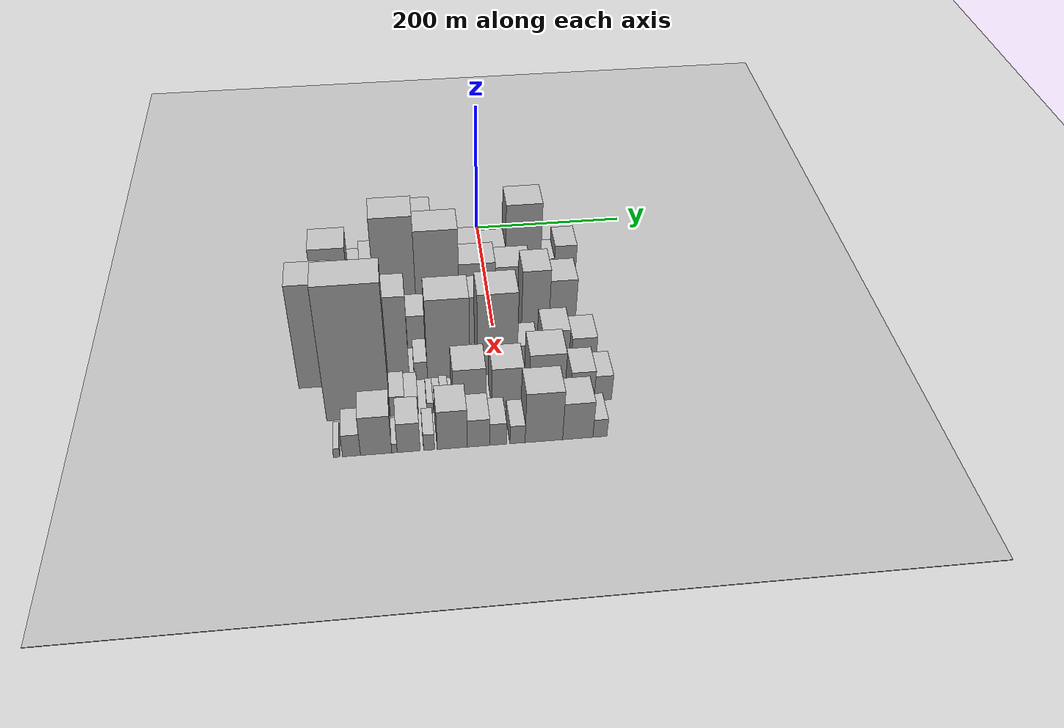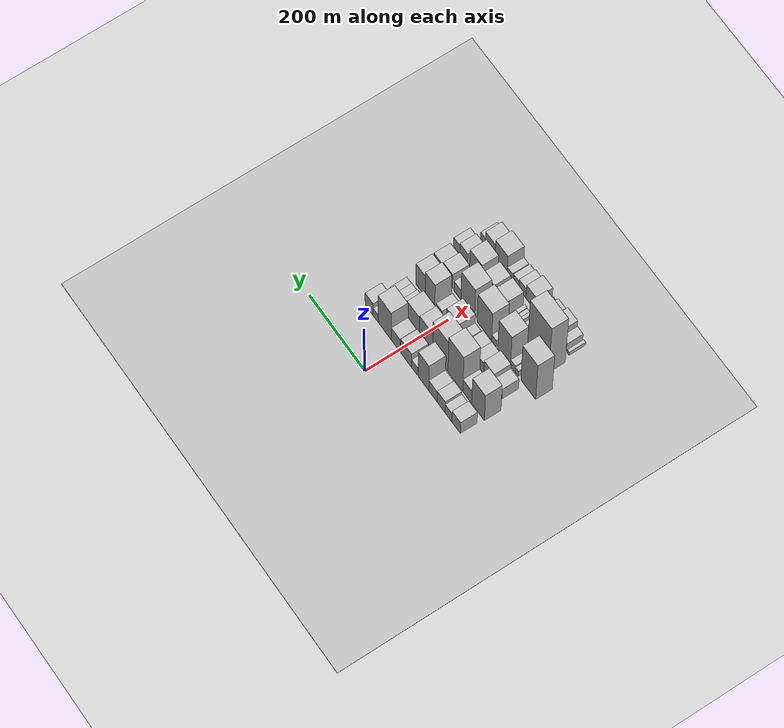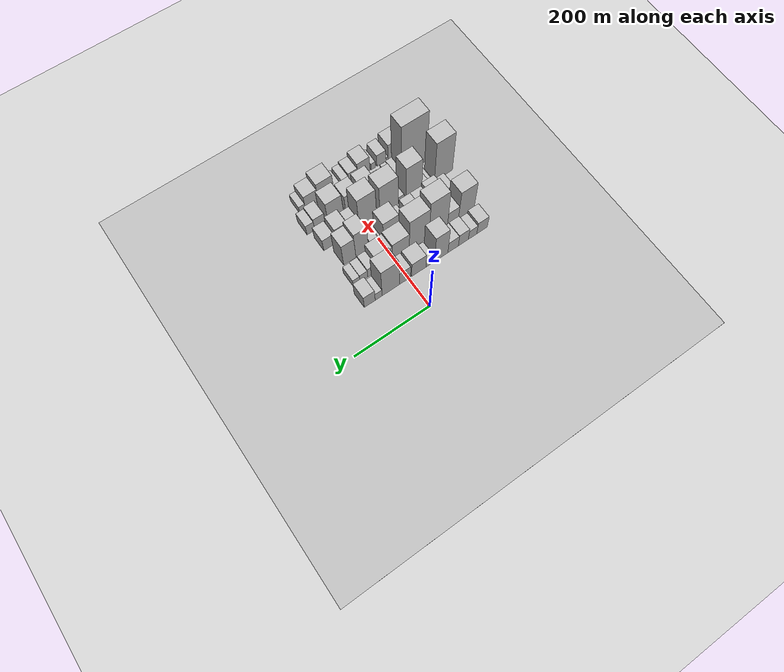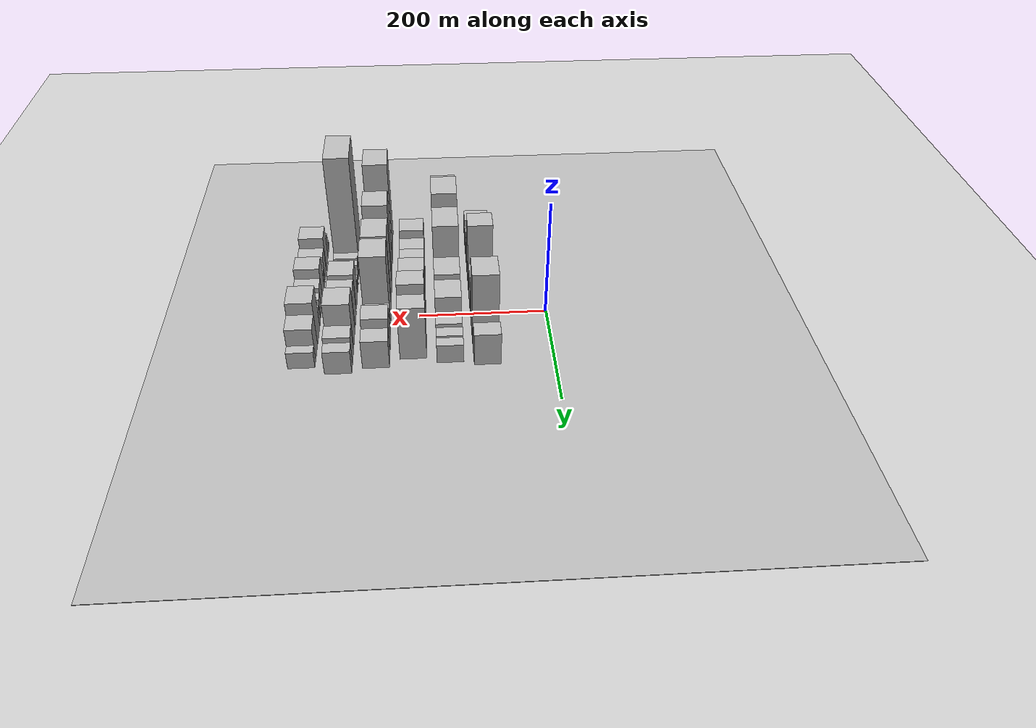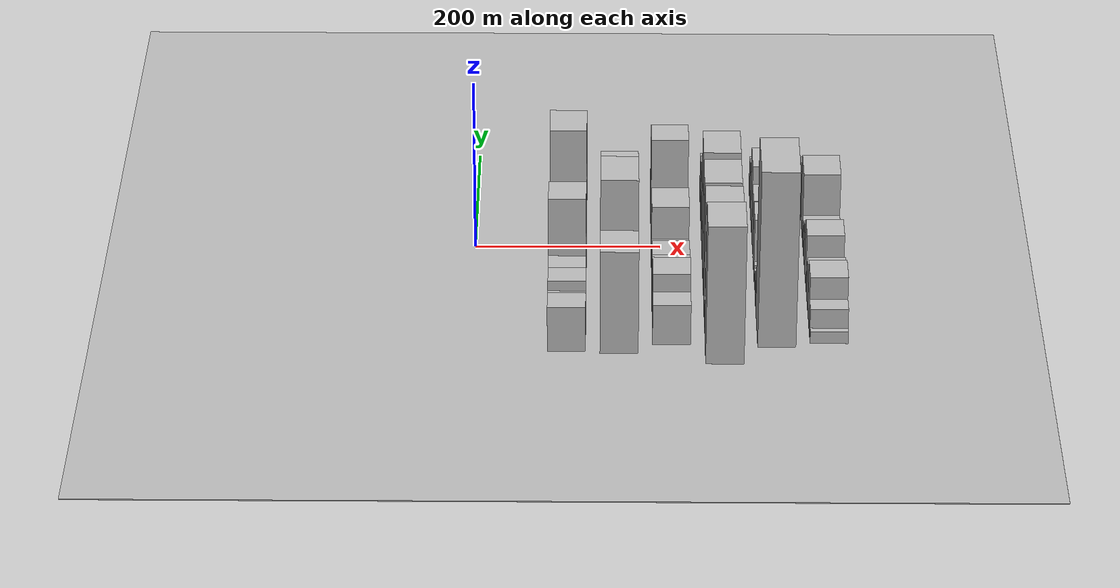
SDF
<sdf version="1.6">
 <world name="default">
  <include><name>ground_plane_1</name><uri>model://HANNAS_ground_plane</uri></include>
  <include>
   <name>ground_plane_2</name>
   <uri>model://HANNAS_ground_plane</uri>
   <pose>100 0 0  0 0 0</pose>
  </include>
  <model name="building_22">
   <static>1</static>
   <pose>100.0000 -203.3418 0 0.000000 0.000000 0.000000</pose>
   <link name="link">
    <pose>0 0 27.00 0 0 0</pose>
    <collision name="collision"><geometry><box><size>40.0000 29.8557 54.0000</size></box></geometry></collision>
    <visual name="visual">
     <cast_shadows>0</cast_shadows>
     <geometry><box><size>40.0000 29.8557 54.0000</size></box></geometry>
     <material>
      <script>
       <uri>model://HANNAS_wall/materials/scripts</uri>
       <uri>model://HANNAS_wall/materials/textures</uri>
       <name>vrc/HANNAS_wall</name>
      </script>
     </material>
    </visual>
   </link>
  </model>
  <model name="building_23">
   <static>1</static>
   <pose>100.0000 -176.4392 0 0.000000 0.000000 0.000000</pose>
   <link name="link">
    <pose>0 0 21.00 0 0 0</pose>
    <collision name="collision"><geometry><box><size>40.0000 23.9494 42.0000</size></box></geometry></collision>
    <visual name="visual">
     <cast_shadows>0</cast_shadows>
     <geometry><box><size>40.0000 23.9494 42.0000</size></box></geometry>
     <material>
      <script>
       <uri>model://HANNAS_wall/materials/scripts</uri>
       <uri>model://HANNAS_wall/materials/textures</uri>
       <name>vrc/HANNAS_wall</name>
      </script>
     </material>
    </visual>
   </link>
  </model>
  <model name="building_24">
   <static>1</static>
   <pose>100.0000 -150.4346 0 0.000000 0.000000 0.000000</pose>
   <link name="link">
    <pose>0 0 27.00 0 0 0</pose>
    <collision name="collision"><geometry><box><size>40.0000 28.0599 54.0000</size></box></geometry></collision>
    <visual name="visual">
     <cast_shadows>0</cast_shadows>
     <geometry><box><size>40.0000 28.0599 54.0000</size></box></geometry>
     <material>
      <script>
       <uri>model://HANNAS_wall/materials/scripts</uri>
       <uri>model://HANNAS_wall/materials/textures</uri>
       <name>vrc/HANNAS_wall</name>
      </script>
     </material>
    </visual>
   </link>
  </model>
  <model name="building_25">
   <static>1</static>
   <pose>100.0000 -121.6439 0 0.000000 0.000000 0.000000</pose>
   <link name="link">
    <pose>0 0 25.50 0 0 0</pose>
    <collision name="collision"><geometry><box><size>40.0000 29.5215 51.0000</size></box></geometry></collision>
    <visual name="visual">
     <cast_shadows>0</cast_shadows>
     <geometry><box><size>40.0000 29.5215 51.0000</size></box></geometry>
     <material>
      <script>
       <uri>model://HANNAS_wall/materials/scripts</uri>
       <uri>model://HANNAS_wall/materials/textures</uri>
       <name>vrc/HANNAS_wall</name>
      </script>
     </material>
    </visual>
   </link>
  </model>
  <model name="building_26">
   <static>1</static>
   <pose>100.0000 -88.3170 0 0.000000 0.000000 0.000000</pose>
   <link name="link">
    <pose>0 0 60.00 0 0 0</pose>
    <collision name="collision"><geometry><box><size>40.0000 37.1322 120.0000</size></box></geometry></collision>
    <visual name="visual">
     <cast_shadows>0</cast_shadows>
     <geometry><box><size>40.0000 37.1322 120.0000</size></box></geometry>
     <material>
      <script>
       <uri>model://HANNAS_wall/materials/scripts</uri>
       <uri>model://HANNAS_wall/materials/textures</uri>
       <name>vrc/HANNAS_wall</name>
      </script>
     </material>
    </visual>
   </link>
  </model>
  <model name="building_27">
   <static>1</static>
   <pose>100.0000 -56.5800 0 0.000000 0.000000 0.000000</pose>
   <link name="link">
    <pose>0 0 19.50 0 0 0</pose>
    <collision name="collision"><geometry><box><size>40.0000 20.3419 39.0000</size></box></geometry></collision>
    <visual name="visual">
     <cast_shadows>0</cast_shadows>
     <geometry><box><size>40.0000 20.3419 39.0000</size></box></geometry>
     <material>
      <script>
       <uri>model://HANNAS_wall/materials/scripts</uri>
       <uri>model://HANNAS_wall/materials/textures</uri>
       <name>vrc/HANNAS_wall</name>
      </script>
     </material>
    </visual>
   </link>
  </model>
  <model name="building_28">
   <static>1</static>
   <pose>100.0000 -26.8657 0 0.000000 0.000000 0.000000</pose>
   <link name="link">
    <pose>0 0 33.00 0 0 0</pose>
    <collision name="collision"><geometry><box><size>40.0000 39.0865 66.0000</size></box></geometry></collision>
    <visual name="visual">
     <cast_shadows>0</cast_shadows>
     <geometry><box><size>40.0000 39.0865 66.0000</size></box></geometry>
     <material>
      <script>
       <uri>model://HANNAS_wall/materials/scripts</uri>
       <uri>model://HANNAS_wall/materials/textures</uri>
       <name>vrc/HANNAS_wall</name>
      </script>
     </material>
    </visual>
   </link>
  </model>
  <model name="building_29">
   <static>1</static>
   <pose>100.0000 10.8078 0 0.000000 0.000000 0.000000</pose>
   <link name="link">
    <pose>0 0 30.00 0 0 0</pose>
    <collision name="collision"><geometry><box><size>40.0000 30.2605 60.0000</size></box></geometry></collision>
    <visual name="visual">
     <cast_shadows>0</cast_shadows>
     <geometry><box><size>40.0000 30.2605 60.0000</size></box></geometry>
     <material>
      <script>
       <uri>model://HANNAS_wall/materials/scripts</uri>
       <uri>model://HANNAS_wall/materials/textures</uri>
       <name>vrc/HANNAS_wall</name>
      </script>
     </material>
    </visual>
   </link>
  </model>
  <model name="building_30">
   <static>1</static>
   <pose>100.0000 49.1563 0 0.000000 0.000000 0.000000</pose>
   <link name="link">
    <pose>0 0 64.50 0 0 0</pose>
    <collision name="collision"><geometry><box><size>40.0000 46.4365 129.0000</size></box></geometry></collision>
    <visual name="visual">
     <cast_shadows>0</cast_shadows>
     <geometry><box><size>40.0000 46.4365 129.0000</size></box></geometry>
     <material>
      <script>
       <uri>model://HANNAS_wall/materials/scripts</uri>
       <uri>model://HANNAS_wall/materials/textures</uri>
       <name>vrc/HANNAS_wall</name>
      </script>
     </material>
    </visual>
   </link>
  </model>
  <model name="building_31">
   <static>1</static>
   <pose>100.0000 81.6413 0 0.000000 0.000000 0.000000</pose>
   <link name="link">
    <pose>0 0 18.00 0 0 0</pose>
    <collision name="collision"><geometry><box><size>40.0000 18.5334 36.0000</size></box></geometry></collision>
    <visual name="visual">
     <cast_shadows>0</cast_shadows>
     <geometry><box><size>40.0000 18.5334 36.0000</size></box></geometry>
     <material>
      <script>
       <uri>model://HANNAS_wall/materials/scripts</uri>
       <uri>model://HANNAS_wall/materials/textures</uri>
       <name>vrc/HANNAS_wall</name>
      </script>
     </material>
    </visual>
   </link>
  </model>
  <model name="building_32">
   <static>1</static>
   <pose>100.0000 105.3341 0 0.000000 0.000000 0.000000</pose>
   <link name="link">
    <pose>0 0 28.50 0 0 0</pose>
    <collision name="collision"><geometry><box><size>40.0000 28.8521 57.0000</size></box></geometry></collision>
    <visual name="visual">
     <cast_shadows>0</cast_shadows>
     <geometry><box><size>40.0000 28.8521 57.0000</size></box></geometry>
     <material>
      <script>
       <uri>model://HANNAS_wall/materials/scripts</uri>
       <uri>model://HANNAS_wall/materials/textures</uri>
       <name>vrc/HANNAS_wall</name>
      </script>
     </material>
    </visual>
   </link>
  </model>
  <model name="building_77">
   <static>1</static>
   <pose>155.0000 -199.8251 0 0.000000 0.000000 0.000000</pose>
   <link name="link">
    <pose>0 0 61.50 0 0 0</pose>
    <collision name="collision"><geometry><box><size>40.0000 44.5802 123.0000</size></box></geometry></collision>
    <visual name="visual">
     <cast_shadows>0</cast_shadows>
     <geometry><box><size>40.0000 44.5802 123.0000</size></box></geometry>
     <material>
      <script>
       <uri>model://HANNAS_wall/materials/scripts</uri>
       <uri>model://HANNAS_wall/materials/textures</uri>
       <name>vrc/HANNAS_wall</name>
      </script>
     </material>
    </visual>
   </link>
  </model>
  <model name="building_78">
   <static>1</static>
   <pose>155.0000 -161.8962 0 0.000000 0.000000 0.000000</pose>
   <link name="link">
    <pose>0 0 30.00 0 0 0</pose>
    <collision name="collision"><geometry><box><size>40.0000 31.2775 60.0000</size></box></geometry></collision>
    <visual name="visual">
     <cast_shadows>0</cast_shadows>
     <geometry><box><size>40.0000 31.2775 60.0000</size></box></geometry>
     <material>
      <script>
       <uri>model://HANNAS_wall/materials/scripts</uri>
       <uri>model://HANNAS_wall/materials/textures</uri>
       <name>vrc/HANNAS_wall</name>
      </script>
     </material>
    </visual>
   </link>
  </model>
  <model name="building_79">
   <static>1</static>
   <pose>155.0000 -120.3510 0 0.000000 0.000000 0.000000</pose>
   <link name="link">
    <pose>0 0 82.50 0 0 0</pose>
    <collision name="collision"><geometry><box><size>40.0000 51.8129 165.0000</size></box></geometry></collision>
    <visual name="visual">
     <cast_shadows>0</cast_shadows>
     <geometry><box><size>40.0000 51.8129 165.0000</size></box></geometry>
     <material>
      <script>
       <uri>model://HANNAS_wall/materials/scripts</uri>
       <uri>model://HANNAS_wall/materials/textures</uri>
       <name>vrc/HANNAS_wall</name>
      </script>
     </material>
    </visual>
   </link>
  </model>
  <model name="building_80">
   <static>1</static>
   <pose>155.0000 -67.1273 0 0.000000 0.000000 0.000000</pose>
   <link name="link">
    <pose>0 0 70.50 0 0 0</pose>
    <collision name="collision"><geometry><box><size>40.0000 54.6345 141.0000</size></box></geometry></collision>
    <visual name="visual">
     <cast_shadows>0</cast_shadows>
     <geometry><box><size>40.0000 54.6345 141.0000</size></box></geometry>
     <material>
      <script>
       <uri>model://HANNAS_wall/materials/scripts</uri>
       <uri>model://HANNAS_wall/materials/textures</uri>
       <name>vrc/HANNAS_wall</name>
      </script>
     </material>
    </visual>
   </link>
  </model>
  <model name="building_81">
   <static>1</static>
   <pose>155.0000 -16.7177 0 0.000000 0.000000 0.000000</pose>
   <link name="link">
    <pose>0 0 42.00 0 0 0</pose>
    <collision name="collision"><geometry><box><size>40.0000 46.1846 84.0000</size></box></geometry></collision>
    <visual name="visual">
     <cast_shadows>0</cast_shadows>
     <geometry><box><size>40.0000 46.1846 84.0000</size></box></geometry>
     <material>
      <script>
       <uri>model://HANNAS_wall/materials/scripts</uri>
       <uri>model://HANNAS_wall/materials/textures</uri>
       <name>vrc/HANNAS_wall</name>
      </script>
     </material>
    </visual>
   </link>
  </model>
  <model name="building_82">
   <static>1</static>
   <pose>155.0000 28.8551 0 0.000000 0.000000 0.000000</pose>
   <link name="link">
    <pose>0 0 37.50 0 0 0</pose>
    <collision name="collision"><geometry><box><size>40.0000 44.9611 75.0000</size></box></geometry></collision>
    <visual name="visual">
     <cast_shadows>0</cast_shadows>
     <geometry><box><size>40.0000 44.9611 75.0000</size></box></geometry>
     <material>
      <script>
       <uri>model://HANNAS_wall/materials/scripts</uri>
       <uri>model://HANNAS_wall/materials/textures</uri>
       <name>vrc/HANNAS_wall</name>
      </script>
     </material>
    </visual>
   </link>
  </model>
  <model name="building_83">
   <static>1</static>
   <pose>155.0000 62.2718 0 0.000000 0.000000 0.000000</pose>
   <link name="link">
    <pose>0 0 21.00 0 0 0</pose>
    <collision name="collision"><geometry><box><size>40.0000 21.8722 42.0000</size></box></geometry></collision>
    <visual name="visual">
     <cast_shadows>0</cast_shadows>
     <geometry><box><size>40.0000 21.8722 42.0000</size></box></geometry>
     <material>
      <script>
       <uri>model://HANNAS_wall/materials/scripts</uri>
       <uri>model://HANNAS_wall/materials/textures</uri>
       <name>vrc/HANNAS_wall</name>
      </script>
     </material>
    </visual>
   </link>
  </model>
  <model name="building_84">
   <static>1</static>
   <pose>155.0000 83.4148 0 0.000000 0.000000 0.000000</pose>
   <link name="link">
    <pose>0 0 18.00 0 0 0</pose>
    <collision name="collision"><geometry><box><size>40.0000 20.4138 36.0000</size></box></geometry></collision>
    <visual name="visual">
     <cast_shadows>0</cast_shadows>
     <geometry><box><size>40.0000 20.4138 36.0000</size></box></geometry>
     <material>
      <script>
       <uri>model://HANNAS_wall/materials/scripts</uri>
       <uri>model://HANNAS_wall/materials/textures</uri>
       <name>vrc/HANNAS_wall</name>
      </script>
     </material>
    </visual>
   </link>
  </model>
  <model name="building_85">
   <static>1</static>
   <pose>155.0000 102.8067 0 0.000000 0.000000 0.000000</pose>
   <link name="link">
    <pose>0 0 16.50 0 0 0</pose>
    <collision name="collision"><geometry><box><size>40.0000 18.3700 33.0000</size></box></geometry></collision>
    <visual name="visual">
     <cast_shadows>0</cast_shadows>
     <geometry><box><size>40.0000 18.3700 33.0000</size></box></geometry>
     <material>
      <script>
       <uri>model://HANNAS_wall/materials/scripts</uri>
       <uri>model://HANNAS_wall/materials/textures</uri>
       <name>vrc/HANNAS_wall</name>
      </script>
     </material>
    </visual>
   </link>
  </model>
  <model name="building_128">
   <static>1</static>
   <pose>210.0000 -189.1695 0 0.000000 0.000000 0.000000</pose>
   <link name="link">
    <pose>0 0 24.00 0 0 0</pose>
    <collision name="collision"><geometry><box><size>40.0000 28.1694 48.0000</size></box></geometry></collision>
    <visual name="visual">
     <cast_shadows>0</cast_shadows>
     <geometry><box><size>40.0000 28.1694 48.0000</size></box></geometry>
     <material>
      <script>
       <uri>model://HANNAS_wall/materials/scripts</uri>
       <uri>model://HANNAS_wall/materials/textures</uri>
       <name>vrc/HANNAS_wall</name>
      </script>
     </material>
    </visual>
   </link>
  </model>
  <model name="building_129">
   <static>1</static>
   <pose>210.0000 -157.2749 0 0.000000 0.000000 0.000000</pose>
   <link name="link">
    <pose>0 0 34.50 0 0 0</pose>
    <collision name="collision"><geometry><box><size>40.0000 35.6198 69.0000</size></box></geometry></collision>
    <visual name="visual">
     <cast_shadows>0</cast_shadows>
     <geometry><box><size>40.0000 35.6198 69.0000</size></box></geometry>
     <material>
      <script>
       <uri>model://HANNAS_wall/materials/scripts</uri>
       <uri>model://HANNAS_wall/materials/textures</uri>
       <name>vrc/HANNAS_wall</name>
      </script>
     </material>
    </visual>
   </link>
  </model>
  <model name="building_130">
   <static>1</static>
   <pose>210.0000 -124.1151 0 0.000000 0.000000 0.000000</pose>
   <link name="link">
    <pose>0 0 27.00 0 0 0</pose>
    <collision name="collision"><geometry><box><size>40.0000 30.7000 54.0000</size></box></geometry></collision>
    <visual name="visual">
     <cast_shadows>0</cast_shadows>
     <geometry><box><size>40.0000 30.7000 54.0000</size></box></geometry>
     <material>
      <script>
       <uri>model://HANNAS_wall/materials/scripts</uri>
       <uri>model://HANNAS_wall/materials/textures</uri>
       <name>vrc/HANNAS_wall</name>
      </script>
     </material>
    </visual>
   </link>
  </model>
  <model name="building_131">
   <static>1</static>
   <pose>210.0000 -93.6935 0 0.000000 0.000000 0.000000</pose>
   <link name="link">
    <pose>0 0 27.00 0 0 0</pose>
    <collision name="collision"><geometry><box><size>40.0000 30.1431 54.0000</size></box></geometry></collision>
    <visual name="visual">
     <cast_shadows>0</cast_shadows>
     <geometry><box><size>40.0000 30.1431 54.0000</size></box></geometry>
     <material>
      <script>
       <uri>model://HANNAS_wall/materials/scripts</uri>
       <uri>model://HANNAS_wall/materials/textures</uri>
       <name>vrc/HANNAS_wall</name>
      </script>
     </material>
    </visual>
   </link>
  </model>
  <model name="building_132">
   <static>1</static>
   <pose>210.0000 -60.9863 0 0.000000 0.000000 0.000000</pose>
   <link name="link">
    <pose>0 0 19.50 0 0 0</pose>
    <collision name="collision"><geometry><box><size>40.0000 21.2712 39.0000</size></box></geometry></collision>
    <visual name="visual">
     <cast_shadows>0</cast_shadows>
     <geometry><box><size>40.0000 21.2712 39.0000</size></box></geometry>
     <material>
      <script>
       <uri>model://HANNAS_wall/materials/scripts</uri>
       <uri>model://HANNAS_wall/materials/textures</uri>
       <name>vrc/HANNAS_wall</name>
      </script>
     </material>
    </visual>
   </link>
  </model>
  <model name="building_133">
   <static>1</static>
   <pose>210.0000 -28.8298 0 0.000000 0.000000 0.000000</pose>
   <link name="link">
    <pose>0 0 39.00 0 0 0</pose>
    <collision name="collision"><geometry><box><size>40.0000 43.0419 78.0000</size></box></geometry></collision>
    <visual name="visual">
     <cast_shadows>0</cast_shadows>
     <geometry><box><size>40.0000 43.0419 78.0000</size></box></geometry>
     <material>
      <script>
       <uri>model://HANNAS_wall/materials/scripts</uri>
       <uri>model://HANNAS_wall/materials/textures</uri>
       <name>vrc/HANNAS_wall</name>
      </script>
     </material>
    </visual>
   </link>
  </model>
  <model name="building_134">
   <static>1</static>
   <pose>210.0000 4.8229 0 0.000000 0.000000 0.000000</pose>
   <link name="link">
    <pose>0 0 7.50 0 0 0</pose>
    <collision name="collision"><geometry><box><size>40.0000 6.2635 15.0000</size></box></geometry></collision>
    <visual name="visual">
     <cast_shadows>0</cast_shadows>
     <geometry><box><size>40.0000 6.2635 15.0000</size></box></geometry>
     <material>
      <script>
       <uri>model://HANNAS_wall/materials/scripts</uri>
       <uri>model://HANNAS_wall/materials/textures</uri>
       <name>vrc/HANNAS_wall</name>
      </script>
     </material>
    </visual>
   </link>
  </model>
  <model name="building_135">
   <static>1</static>
   <pose>210.0000 18.7124 0 0.000000 0.000000 0.000000</pose>
   <link name="link">
    <pose>0 0 18.00 0 0 0</pose>
    <collision name="collision"><geometry><box><size>40.0000 21.5155 36.0000</size></box></geometry></collision>
    <visual name="visual">
     <cast_shadows>0</cast_shadows>
     <geometry><box><size>40.0000 21.5155 36.0000</size></box></geometry>
     <material>
      <script>
       <uri>model://HANNAS_wall/materials/scripts</uri>
       <uri>model://HANNAS_wall/materials/textures</uri>
       <name>vrc/HANNAS_wall</name>
      </script>
     </material>
    </visual>
   </link>
  </model>
  <model name="building_136">
   <static>1</static>
   <pose>210.0000 50.6151 0 0.000000 0.000000 0.000000</pose>
   <link name="link">
    <pose>0 0 57.00 0 0 0</pose>
    <collision name="collision"><geometry><box><size>40.0000 34.2898 114.0000</size></box></geometry></collision>
    <visual name="visual">
     <cast_shadows>0</cast_shadows>
     <geometry><box><size>40.0000 34.2898 114.0000</size></box></geometry>
     <material>
      <script>
       <uri>model://HANNAS_wall/materials/scripts</uri>
       <uri>model://HANNAS_wall/materials/textures</uri>
       <name>vrc/HANNAS_wall</name>
      </script>
     </material>
    </visual>
   </link>
  </model>
  <model name="building_137">
   <static>1</static>
   <pose>210.0000 84.2709 0 0.000000 0.000000 0.000000</pose>
   <link name="link">
    <pose>0 0 48.00 0 0 0</pose>
    <collision name="collision"><geometry><box><size>40.0000 33.0219 96.0000</size></box></geometry></collision>
    <visual name="visual">
     <cast_shadows>0</cast_shadows>
     <geometry><box><size>40.0000 33.0219 96.0000</size></box></geometry>
     <material>
      <script>
       <uri>model://HANNAS_wall/materials/scripts</uri>
       <uri>model://HANNAS_wall/materials/textures</uri>
       <name>vrc/HANNAS_wall</name>
      </script>
     </material>
    </visual>
   </link>
  </model>
  <model name="building_182">
   <static>1</static>
   <pose>265.0000 -215.6051 0 0.000000 0.000000 0.000000</pose>
   <link name="link">
    <pose>0 0 82.50 0 0 0</pose>
    <collision name="collision"><geometry><box><size>40.0000 51.8993 165.0000</size></box></geometry></collision>
    <visual name="visual">
     <cast_shadows>0</cast_shadows>
     <geometry><box><size>40.0000 51.8993 165.0000</size></box></geometry>
     <material>
      <script>
       <uri>model://HANNAS_wall/materials/scripts</uri>
       <uri>model://HANNAS_wall/materials/textures</uri>
       <name>vrc/HANNAS_wall</name>
      </script>
     </material>
    </visual>
   </link>
  </model>
  <model name="building_183">
   <static>1</static>
   <pose>265.0000 -175.2644 0 0.000000 0.000000 0.000000</pose>
   <link name="link">
    <pose>0 0 12.00 0 0 0</pose>
    <collision name="collision"><geometry><box><size>40.0000 10.7821 24.0000</size></box></geometry></collision>
    <visual name="visual">
     <cast_shadows>0</cast_shadows>
     <geometry><box><size>40.0000 10.7821 24.0000</size></box></geometry>
     <material>
      <script>
       <uri>model://HANNAS_wall/materials/scripts</uri>
       <uri>model://HANNAS_wall/materials/textures</uri>
       <name>vrc/HANNAS_wall</name>
      </script>
     </material>
    </visual>
   </link>
  </model>
  <model name="building_184">
   <static>1</static>
   <pose>265.0000 -161.6234 0 0.000000 0.000000 0.000000</pose>
   <link name="link">
    <pose>0 0 15.00 0 0 0</pose>
    <collision name="collision"><geometry><box><size>40.0000 16.4998 30.0000</size></box></geometry></collision>
    <visual name="visual">
     <cast_shadows>0</cast_shadows>
     <geometry><box><size>40.0000 16.4998 30.0000</size></box></geometry>
     <material>
      <script>
       <uri>model://HANNAS_wall/materials/scripts</uri>
       <uri>model://HANNAS_wall/materials/textures</uri>
       <name>vrc/HANNAS_wall</name>
      </script>
     </material>
    </visual>
   </link>
  </model>
  <model name="building_185">
   <static>1</static>
   <pose>265.0000 -131.2296 0 0.000000 0.000000 0.000000</pose>
   <link name="link">
    <pose>0 0 69.00 0 0 0</pose>
    <collision name="collision"><geometry><box><size>40.0000 44.2877 138.0000</size></box></geometry></collision>
    <visual name="visual">
     <cast_shadows>0</cast_shadows>
     <geometry><box><size>40.0000 44.2877 138.0000</size></box></geometry>
     <material>
      <script>
       <uri>model://HANNAS_wall/materials/scripts</uri>
       <uri>model://HANNAS_wall/materials/textures</uri>
       <name>vrc/HANNAS_wall</name>
      </script>
     </material>
    </visual>
   </link>
  </model>
  <model name="building_186">
   <static>1</static>
   <pose>265.0000 -95.1825 0 0.000000 0.000000 0.000000</pose>
   <link name="link">
    <pose>0 0 15.00 0 0 0</pose>
    <collision name="collision"><geometry><box><size>40.0000 15.8065 30.0000</size></box></geometry></collision>
    <visual name="visual">
     <cast_shadows>0</cast_shadows>
     <geometry><box><size>40.0000 15.8065 30.0000</size></box></geometry>
     <material>
      <script>
       <uri>model://HANNAS_wall/materials/scripts</uri>
       <uri>model://HANNAS_wall/materials/textures</uri>
       <name>vrc/HANNAS_wall</name>
      </script>
     </material>
    </visual>
   </link>
  </model>
  <model name="building_187">
   <static>1</static>
   <pose>265.0000 -61.5658 0 0.000000 0.000000 0.000000</pose>
   <link name="link">
    <pose>0 0 64.50 0 0 0</pose>
    <collision name="collision"><geometry><box><size>40.0000 51.4269 129.0000</size></box></geometry></collision>
    <visual name="visual">
     <cast_shadows>0</cast_shadows>
     <geometry><box><size>40.0000 51.4269 129.0000</size></box></geometry>
     <material>
      <script>
       <uri>model://HANNAS_wall/materials/scripts</uri>
       <uri>model://HANNAS_wall/materials/textures</uri>
       <name>vrc/HANNAS_wall</name>
      </script>
     </material>
    </visual>
   </link>
  </model>
  <model name="building_188">
   <static>1</static>
   <pose>265.0000 -2.7063 0 0.000000 0.000000 0.000000</pose>
   <link name="link">
    <pose>0 0 66.00 0 0 0</pose>
    <collision name="collision"><geometry><box><size>40.0000 48.2919 132.0000</size></box></geometry></collision>
    <visual name="visual">
     <cast_shadows>0</cast_shadows>
     <geometry><box><size>40.0000 48.2919 132.0000</size></box></geometry>
     <material>
      <script>
       <uri>model://HANNAS_wall/materials/scripts</uri>
       <uri>model://HANNAS_wall/materials/textures</uri>
       <name>vrc/HANNAS_wall</name>
      </script>
     </material>
    </visual>
   </link>
  </model>
  <model name="building_189">
   <static>1</static>
   <pose>265.0000 33.8729 0 0.000000 0.000000 0.000000</pose>
   <link name="link">
    <pose>0 0 22.50 0 0 0</pose>
    <collision name="collision"><geometry><box><size>40.0000 24.8665 45.0000</size></box></geometry></collision>
    <visual name="visual">
     <cast_shadows>0</cast_shadows>
     <geometry><box><size>40.0000 24.8665 45.0000</size></box></geometry>
     <material>
      <script>
       <uri>model://HANNAS_wall/materials/scripts</uri>
       <uri>model://HANNAS_wall/materials/textures</uri>
       <name>vrc/HANNAS_wall</name>
      </script>
     </material>
    </visual>
   </link>
  </model>
  <model name="building_190">
   <static>1</static>
   <pose>265.0000 67.9472 0 0.000000 0.000000 0.000000</pose>
   <link name="link">
    <pose>0 0 33.00 0 0 0</pose>
    <collision name="collision"><geometry><box><size>40.0000 33.2822 66.0000</size></box></geometry></collision>
    <visual name="visual">
     <cast_shadows>0</cast_shadows>
     <geometry><box><size>40.0000 33.2822 66.0000</size></box></geometry>
     <material>
      <script>
       <uri>model://HANNAS_wall/materials/scripts</uri>
       <uri>model://HANNAS_wall/materials/textures</uri>
       <name>vrc/HANNAS_wall</name>
      </script>
     </material>
    </visual>
   </link>
  </model>
  <model name="building_191">
   <static>1</static>
   <pose>265.0000 102.7457 0 0.000000 0.000000 0.000000</pose>
   <link name="link">
    <pose>0 0 25.50 0 0 0</pose>
    <collision name="collision"><geometry><box><size>40.0000 30.3149 51.0000</size></box></geometry></collision>
    <visual name="visual">
     <cast_shadows>0</cast_shadows>
     <geometry><box><size>40.0000 30.3149 51.0000</size></box></geometry>
     <material>
      <script>
       <uri>model://HANNAS_wall/materials/scripts</uri>
       <uri>model://HANNAS_wall/materials/textures</uri>
       <name>vrc/HANNAS_wall</name>
      </script>
     </material>
    </visual>
   </link>
  </model>
  <model name="building_237">
   <static>1</static>
   <pose>320.0000 -171.0565 0 0.000000 0.000000 0.000000</pose>
   <link name="link">
    <pose>0 0 105.00 0 0 0</pose>
    <collision name="collision"><geometry><box><size>40.0000 73.8094 210.0000</size></box></geometry></collision>
    <visual name="visual">
     <cast_shadows>0</cast_shadows>
     <geometry><box><size>40.0000 73.8094 210.0000</size></box></geometry>
     <material>
      <script>
       <uri>model://HANNAS_wall/materials/scripts</uri>
       <uri>model://HANNAS_wall/materials/textures</uri>
       <name>vrc/HANNAS_wall</name>
      </script>
     </material>
    </visual>
   </link>
  </model>
  <model name="building_238">
   <static>1</static>
   <pose>320.0000 -125.4587 0 0.000000 0.000000 0.000000</pose>
   <link name="link">
    <pose>0 0 16.50 0 0 0</pose>
    <collision name="collision"><geometry><box><size>40.0000 17.3862 33.0000</size></box></geometry></collision>
    <visual name="visual">
     <cast_shadows>0</cast_shadows>
     <geometry><box><size>40.0000 17.3862 33.0000</size></box></geometry>
     <material>
      <script>
       <uri>model://HANNAS_wall/materials/scripts</uri>
       <uri>model://HANNAS_wall/materials/textures</uri>
       <name>vrc/HANNAS_wall</name>
      </script>
     </material>
    </visual>
   </link>
  </model>
  <model name="building_239">
   <static>1</static>
   <pose>320.0000 -108.9763 0 0.000000 0.000000 0.000000</pose>
   <link name="link">
    <pose>0 0 15.00 0 0 0</pose>
    <collision name="collision"><geometry><box><size>40.0000 15.5786 30.0000</size></box></geometry></collision>
    <visual name="visual">
     <cast_shadows>0</cast_shadows>
     <geometry><box><size>40.0000 15.5786 30.0000</size></box></geometry>
     <material>
      <script>
       <uri>model://HANNAS_wall/materials/scripts</uri>
       <uri>model://HANNAS_wall/materials/textures</uri>
       <name>vrc/HANNAS_wall</name>
      </script>
     </material>
    </visual>
   </link>
  </model>
  <model name="building_240">
   <static>1</static>
   <pose>320.0000 -87.4072 0 0.000000 0.000000 0.000000</pose>
   <link name="link">
    <pose>0 0 9.00 0 0 0</pose>
    <collision name="collision"><geometry><box><size>40.0000 7.5597 18.0000</size></box></geometry></collision>
    <visual name="visual">
     <cast_shadows>0</cast_shadows>
     <geometry><box><size>40.0000 7.5597 18.0000</size></box></geometry>
     <material>
      <script>
       <uri>model://HANNAS_wall/materials/scripts</uri>
       <uri>model://HANNAS_wall/materials/textures</uri>
       <name>vrc/HANNAS_wall</name>
      </script>
     </material>
    </visual>
   </link>
  </model>
  <model name="building_241">
   <static>1</static>
   <pose>320.0000 -79.2846 0 0.000000 0.000000 0.000000</pose>
   <link name="link">
    <pose>0 0 9.00 0 0 0</pose>
    <collision name="collision"><geometry><box><size>40.0000 8.6855 18.0000</size></box></geometry></collision>
    <visual name="visual">
     <cast_shadows>0</cast_shadows>
     <geometry><box><size>40.0000 8.6855 18.0000</size></box></geometry>
     <material>
      <script>
       <uri>model://HANNAS_wall/materials/scripts</uri>
       <uri>model://HANNAS_wall/materials/textures</uri>
       <name>vrc/HANNAS_wall</name>
      </script>
     </material>
    </visual>
   </link>
  </model>
  <model name="building_242">
   <static>1</static>
   <pose>320.0000 -70.1749 0 0.000000 0.000000 0.000000</pose>
   <link name="link">
    <pose>0 0 10.50 0 0 0</pose>
    <collision name="collision"><geometry><box><size>40.0000 9.5340 21.0000</size></box></geometry></collision>
    <visual name="visual">
     <cast_shadows>0</cast_shadows>
     <geometry><box><size>40.0000 9.5340 21.0000</size></box></geometry>
     <material>
      <script>
       <uri>model://HANNAS_wall/materials/scripts</uri>
       <uri>model://HANNAS_wall/materials/textures</uri>
       <name>vrc/HANNAS_wall</name>
      </script>
     </material>
    </visual>
   </link>
  </model>
  <model name="building_243">
   <static>1</static>
   <pose>320.0000 -41.1484 0 0.000000 0.000000 0.000000</pose>
   <link name="link">
    <pose>0 0 34.50 0 0 0</pose>
    <collision name="collision"><geometry><box><size>40.0000 38.5189 69.0000</size></box></geometry></collision>
    <visual name="visual">
     <cast_shadows>0</cast_shadows>
     <geometry><box><size>40.0000 38.5189 69.0000</size></box></geometry>
     <material>
      <script>
       <uri>model://HANNAS_wall/materials/scripts</uri>
       <uri>model://HANNAS_wall/materials/textures</uri>
       <name>vrc/HANNAS_wall</name>
      </script>
     </material>
    </visual>
   </link>
  </model>
  <model name="building_244">
   <static>1</static>
   <pose>320.0000 3.7483 0 0.000000 0.000000 0.000000</pose>
   <link name="link">
    <pose>0 0 33.00 0 0 0</pose>
    <collision name="collision"><geometry><box><size>40.0000 37.2745 66.0000</size></box></geometry></collision>
    <visual name="visual">
     <cast_shadows>0</cast_shadows>
     <geometry><box><size>40.0000 37.2745 66.0000</size></box></geometry>
     <material>
      <script>
       <uri>model://HANNAS_wall/materials/scripts</uri>
       <uri>model://HANNAS_wall/materials/textures</uri>
       <name>vrc/HANNAS_wall</name>
      </script>
     </material>
    </visual>
   </link>
  </model>
  <model name="building_245">
   <static>1</static>
   <pose>320.0000 49.6381 0 0.000000 0.000000 0.000000</pose>
   <link name="link">
    <pose>0 0 42.00 0 0 0</pose>
    <collision name="collision"><geometry><box><size>40.0000 42.5052 84.0000</size></box></geometry></collision>
    <visual name="visual">
     <cast_shadows>0</cast_shadows>
     <geometry><box><size>40.0000 42.5052 84.0000</size></box></geometry>
     <material>
      <script>
       <uri>model://HANNAS_wall/materials/scripts</uri>
       <uri>model://HANNAS_wall/materials/textures</uri>
       <name>vrc/HANNAS_wall</name>
      </script>
     </material>
    </visual>
   </link>
  </model>
  <model name="building_246">
   <static>1</static>
   <pose>320.0000 92.1829 0 0.000000 0.000000 0.000000</pose>
   <link name="link">
    <pose>0 0 25.50 0 0 0</pose>
    <collision name="collision"><geometry><box><size>40.0000 28.5845 51.0000</size></box></geometry></collision>
    <visual name="visual">
     <cast_shadows>0</cast_shadows>
     <geometry><box><size>40.0000 28.5845 51.0000</size></box></geometry>
     <material>
      <script>
       <uri>model://HANNAS_wall/materials/scripts</uri>
       <uri>model://HANNAS_wall/materials/textures</uri>
       <name>vrc/HANNAS_wall</name>
      </script>
     </material>
    </visual>
   </link>
  </model>
  <model name="building_247">
   <static>1</static>
   <pose>320.0000 116.9809 0 0.000000 0.000000 0.000000</pose>
   <link name="link">
    <pose>0 0 21.00 0 0 0</pose>
    <collision name="collision"><geometry><box><size>40.0000 21.0114 42.0000</size></box></geometry></collision>
    <visual name="visual">
     <cast_shadows>0</cast_shadows>
     <geometry><box><size>40.0000 21.0114 42.0000</size></box></geometry>
     <material>
      <script>
       <uri>model://HANNAS_wall/materials/scripts</uri>
       <uri>model://HANNAS_wall/materials/textures</uri>
       <name>vrc/HANNAS_wall</name>
      </script>
     </material>
    </visual>
   </link>
  </model>
  <model name="building_293">
   <static>1</static>
   <pose>375.0000 -196.4709 0 0.000000 0.000000 0.000000</pose>
   <link name="link">
    <pose>0 0 7.50 0 0 0</pose>
    <collision name="collision"><geometry><box><size>40.0000 7.1926 15.0000</size></box></geometry></collision>
    <visual name="visual">
     <cast_shadows>0</cast_shadows>
     <geometry><box><size>40.0000 7.1926 15.0000</size></box></geometry>
     <material>
      <script>
       <uri>model://HANNAS_wall/materials/scripts</uri>
       <uri>model://HANNAS_wall/materials/textures</uri>
       <name>vrc/HANNAS_wall</name>
      </script>
     </material>
    </visual>
   </link>
  </model>
  <model name="building_294">
   <static>1</static>
   <pose>375.0000 -179.8135 0 0.000000 0.000000 0.000000</pose>
   <link name="link">
    <pose>0 0 18.00 0 0 0</pose>
    <collision name="collision"><geometry><box><size>40.0000 20.1223 36.0000</size></box></geometry></collision>
    <visual name="visual">
     <cast_shadows>0</cast_shadows>
     <geometry><box><size>40.0000 20.1223 36.0000</size></box></geometry>
     <material>
      <script>
       <uri>model://HANNAS_wall/materials/scripts</uri>
       <uri>model://HANNAS_wall/materials/textures</uri>
       <name>vrc/HANNAS_wall</name>
      </script>
     </material>
    </visual>
   </link>
  </model>
  <model name="building_295">
   <static>1</static>
   <pose>375.0000 -152.1303 0 0.000000 0.000000 0.000000</pose>
   <link name="link">
    <pose>0 0 31.50 0 0 0</pose>
    <collision name="collision"><geometry><box><size>40.0000 35.2440 63.0000</size></box></geometry></collision>
    <visual name="visual">
     <cast_shadows>0</cast_shadows>
     <geometry><box><size>40.0000 35.2440 63.0000</size></box></geometry>
     <material>
      <script>
       <uri>model://HANNAS_wall/materials/scripts</uri>
       <uri>model://HANNAS_wall/materials/textures</uri>
       <name>vrc/HANNAS_wall</name>
      </script>
     </material>
    </visual>
   </link>
  </model>
  <model name="building_296">
   <static>1</static>
   <pose>375.0000 -131.4532 0 0.000000 0.000000 0.000000</pose>
   <link name="link">
    <pose>0 0 7.50 0 0 0</pose>
    <collision name="collision"><geometry><box><size>40.0000 6.1102 15.0000</size></box></geometry></collision>
    <visual name="visual">
     <cast_shadows>0</cast_shadows>
     <geometry><box><size>40.0000 6.1102 15.0000</size></box></geometry>
     <material>
      <script>
       <uri>model://HANNAS_wall/materials/scripts</uri>
       <uri>model://HANNAS_wall/materials/textures</uri>
       <name>vrc/HANNAS_wall</name>
      </script>
     </material>
    </visual>
   </link>
  </model>
  <model name="building_297">
   <static>1</static>
   <pose>375.0000 -115.4199 0 0.000000 0.000000 0.000000</pose>
   <link name="link">
    <pose>0 0 24.00 0 0 0</pose>
    <collision name="collision"><geometry><box><size>40.0000 25.9566 48.0000</size></box></geometry></collision>
    <visual name="visual">
     <cast_shadows>0</cast_shadows>
     <geometry><box><size>40.0000 25.9566 48.0000</size></box></geometry>
     <material>
      <script>
       <uri>model://HANNAS_wall/materials/scripts</uri>
       <uri>model://HANNAS_wall/materials/textures</uri>
       <name>vrc/HANNAS_wall</name>
      </script>
     </material>
    </visual>
   </link>
  </model>
  <model name="building_298">
   <static>1</static>
   <pose>375.0000 -92.2187 0 0.000000 0.000000 0.000000</pose>
   <link name="link">
    <pose>0 0 13.50 0 0 0</pose>
    <collision name="collision"><geometry><box><size>40.0000 12.4457 27.0000</size></box></geometry></collision>
    <visual name="visual">
     <cast_shadows>0</cast_shadows>
     <geometry><box><size>40.0000 12.4457 27.0000</size></box></geometry>
     <material>
      <script>
       <uri>model://HANNAS_wall/materials/scripts</uri>
       <uri>model://HANNAS_wall/materials/textures</uri>
       <name>vrc/HANNAS_wall</name>
      </script>
     </material>
    </visual>
   </link>
  </model>
  <model name="building_299">
   <static>1</static>
   <pose>375.0000 -65.8828 0 0.000000 0.000000 0.000000</pose>
   <link name="link">
    <pose>0 0 31.50 0 0 0</pose>
    <collision name="collision"><geometry><box><size>40.0000 34.2262 63.0000</size></box></geometry></collision>
    <visual name="visual">
     <cast_shadows>0</cast_shadows>
     <geometry><box><size>40.0000 34.2262 63.0000</size></box></geometry>
     <material>
      <script>
       <uri>model://HANNAS_wall/materials/scripts</uri>
       <uri>model://HANNAS_wall/materials/textures</uri>
       <name>vrc/HANNAS_wall</name>
      </script>
     </material>
    </visual>
   </link>
  </model>
  <model name="building_300">
   <static>1</static>
   <pose>375.0000 -35.9335 0 0.000000 0.000000 0.000000</pose>
   <link name="link">
    <pose>0 0 22.50 0 0 0</pose>
    <collision name="collision"><geometry><box><size>40.0000 25.6724 45.0000</size></box></geometry></collision>
    <visual name="visual">
     <cast_shadows>0</cast_shadows>
     <geometry><box><size>40.0000 25.6724 45.0000</size></box></geometry>
     <material>
      <script>
       <uri>model://HANNAS_wall/materials/scripts</uri>
       <uri>model://HANNAS_wall/materials/textures</uri>
       <name>vrc/HANNAS_wall</name>
      </script>
     </material>
    </visual>
   </link>
  </model>
  <model name="building_301">
   <static>1</static>
   <pose>375.0000 -13.6113 0 0.000000 0.000000 0.000000</pose>
   <link name="link">
    <pose>0 0 18.00 0 0 0</pose>
    <collision name="collision"><geometry><box><size>40.0000 18.9721 36.0000</size></box></geometry></collision>
    <visual name="visual">
     <cast_shadows>0</cast_shadows>
     <geometry><box><size>40.0000 18.9721 36.0000</size></box></geometry>
     <material>
      <script>
       <uri>model://HANNAS_wall/materials/scripts</uri>
       <uri>model://HANNAS_wall/materials/textures</uri>
       <name>vrc/HANNAS_wall</name>
      </script>
     </material>
    </visual>
   </link>
  </model>
  <model name="building_302">
   <static>1</static>
   <pose>375.0000 8.5950 0 0.000000 0.000000 0.000000</pose>
   <link name="link">
    <pose>0 0 15.00 0 0 0</pose>
    <collision name="collision"><geometry><box><size>40.0000 17.4404 30.0000</size></box></geometry></collision>
    <visual name="visual">
     <cast_shadows>0</cast_shadows>
     <geometry><box><size>40.0000 17.4404 30.0000</size></box></geometry>
     <material>
      <script>
       <uri>model://HANNAS_wall/materials/scripts</uri>
       <uri>model://HANNAS_wall/materials/textures</uri>
       <name>vrc/HANNAS_wall</name>
      </script>
     </material>
    </visual>
   </link>
  </model>
  <model name="building_303">
   <static>1</static>
   <pose>375.0000 38.9390 0 0.000000 0.000000 0.000000</pose>
   <link name="link">
    <pose>0 0 40.50 0 0 0</pose>
    <collision name="collision"><geometry><box><size>40.0000 43.2477 81.0000</size></box></geometry></collision>
    <visual name="visual">
     <cast_shadows>0</cast_shadows>
     <geometry><box><size>40.0000 43.2477 81.0000</size></box></geometry>
     <material>
      <script>
       <uri>model://HANNAS_wall/materials/scripts</uri>
       <uri>model://HANNAS_wall/materials/textures</uri>
       <name>vrc/HANNAS_wall</name>
      </script>
     </material>
    </visual>
   </link>
  </model>
  <model name="building_304">
   <static>1</static>
   <pose>375.0000 78.0785 0 0.000000 0.000000 0.000000</pose>
   <link name="link">
    <pose>0 0 30.00 0 0 0</pose>
    <collision name="collision"><geometry><box><size>40.0000 35.0313 60.0000</size></box></geometry></collision>
    <visual name="visual">
     <cast_shadows>0</cast_shadows>
     <geometry><box><size>40.0000 35.0313 60.0000</size></box></geometry>
     <material>
      <script>
       <uri>model://HANNAS_wall/materials/scripts</uri>
       <uri>model://HANNAS_wall/materials/textures</uri>
       <name>vrc/HANNAS_wall</name>
      </script>
     </material>
    </visual>
   </link>
  </model>
  <model name="building_305">
   <static>1</static>
   <pose>375.0000 103.7649 0 0.000000 0.000000 0.000000</pose>
   <link name="link">
    <pose>0 0 15.00 0 0 0</pose>
    <collision name="collision"><geometry><box><size>40.0000 16.3413 30.0000</size></box></geometry></collision>
    <visual name="visual">
     <cast_shadows>0</cast_shadows>
     <geometry><box><size>40.0000 16.3413 30.0000</size></box></geometry>
     <material>
      <script>
       <uri>model://HANNAS_wall/materials/scripts</uri>
       <uri>model://HANNAS_wall/materials/textures</uri>
       <name>vrc/HANNAS_wall</name>
      </script>
     </material>
    </visual>
   </link>
  </model>
 </world>
</sdf>
